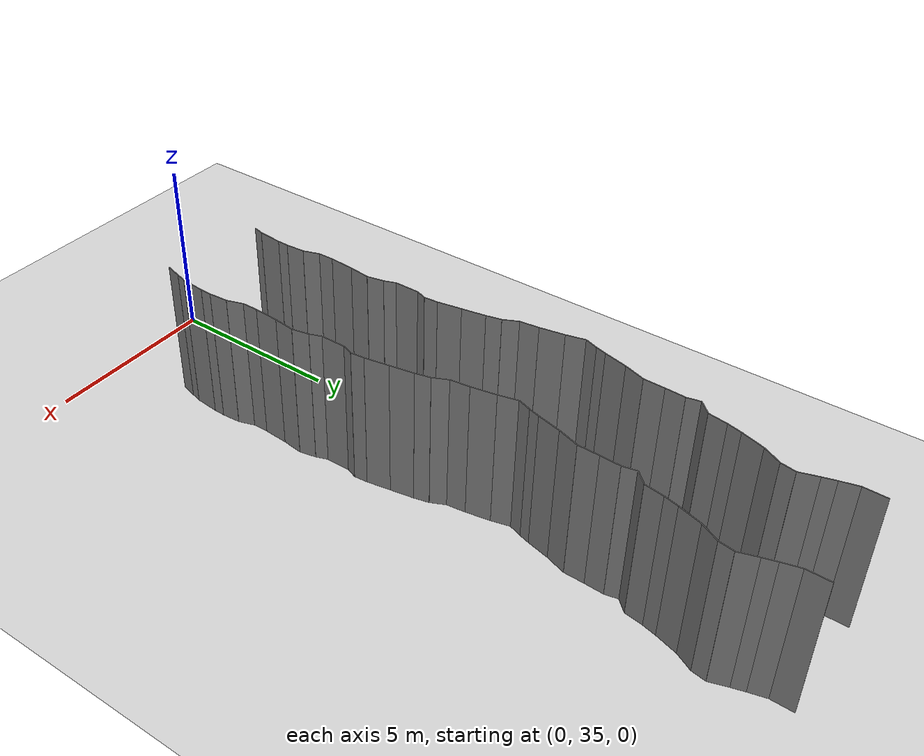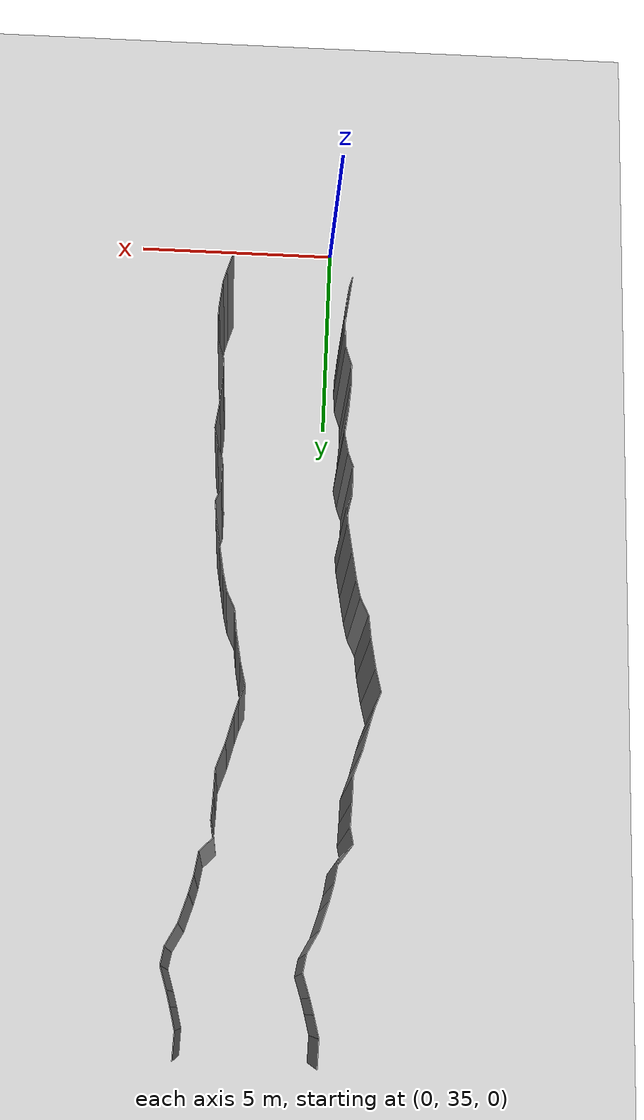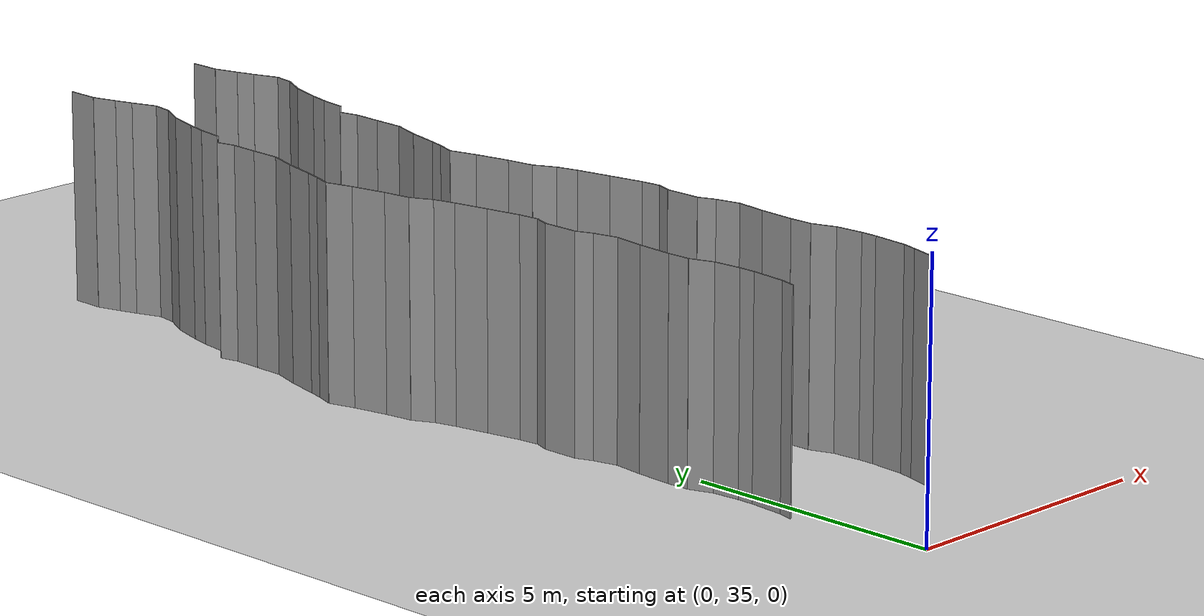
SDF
<sdf version="1.6">
 <world name="default">
  <model name="ground_plane">
   <static>1</static>
   <link name="link">
    <collision name="collision">
     <geometry><plane><normal>0 0 1</normal><size>200 200</size></plane></geometry>
     <surface><friction><ode><mu>100</mu><mu2>50</mu2></ode></friction></surface>
    </collision>
    <visual name="visual">
     <cast_shadows>0</cast_shadows>
     <geometry><plane><normal>0 0 1</normal><size>200 200</size></plane></geometry>
     <material>
      <script><uri>file://media/materials/scripts/gazebo.material</uri><name>Gazebo/Grey</name></script>
     </material>
    </visual>
   </link>
   <pose>0 100 0 0 -0 0</pose>
  </model>
  <model name="wall_149">
   <static>1</static>
   <pose>2.547432905189627 37.388819920014434 2 0 0 -0.2740966487866089</pose>
   <link name="link">
    <collision name="collision"><geometry><box><size>0.02 0.481318007896 4</size></box></geometry></collision>
    <visual name="visual">
     <material>
      <script><name>Gazebo/Grey</name><uri>file://media/materials/scripts/gazebo.material</uri></script>
     </material>
     <geometry><box><size>0.02 0.481318007896 4</size></box></geometry>
    </visual>
   </link>
  </model>
  <model name="wall_150">
   <static>1</static>
   <pose>-0.3501374143286483 37.76663995923312 2 0 0 -0.24981901023422332</pose>
   <link name="link">
    <collision name="collision"><geometry><box><size>0.02 0.301653803901 4</size></box></geometry></collision>
    <visual name="visual">
     <material>
      <script><name>Gazebo/Grey</name><uri>file://media/materials/scripts/gazebo.material</uri></script>
     </material>
     <geometry><box><size>0.02 0.301653803901 4</size></box></geometry>
    </visual>
   </link>
  </model>
  <model name="wall_151">
   <static>1</static>
   <pose>2.6498625856713516 37.76663995923312 2 0 0 -0.24981901023422332</pose>
   <link name="link">
    <collision name="collision"><geometry><box><size>0.02 0.301653803901 4</size></box></geometry></collision>
    <visual name="visual">
     <material>
      <script><name>Gazebo/Grey</name><uri>file://media/materials/scripts/gazebo.material</uri></script>
     </material>
     <geometry><box><size>0.02 0.301653803901 4</size></box></geometry>
    </visual>
   </link>
  </model>
  <model name="wall_152">
   <static>1</static>
   <pose>-0.2819050552775148 38.25617313278533 2 0 0 -0.08986992093812</pose>
   <link name="link">
    <collision name="collision"><geometry><box><size>0.02 0.689559502268 4</size></box></geometry></collision>
    <visual name="visual">
     <material>
      <script><name>Gazebo/Grey</name><uri>file://media/materials/scripts/gazebo.material</uri></script>
     </material>
     <geometry><box><size>0.02 0.689559502268 4</size></box></geometry>
    </visual>
   </link>
  </model>
  <model name="wall_153">
   <static>1</static>
   <pose>2.7180949447224854 38.25617313278533 2 0 0 -0.08986992093812</pose>
   <link name="link">
    <collision name="collision"><geometry><box><size>0.02 0.689559502268 4</size></box></geometry></collision>
    <visual name="visual">
     <material>
      <script><name>Gazebo/Grey</name><uri>file://media/materials/scripts/gazebo.material</uri></script>
     </material>
     <geometry><box><size>0.02 0.689559502268 4</size></box></geometry>
    </visual>
   </link>
  </model>
  <model name="wall_154">
   <static>1</static>
   <pose>-0.24889452237619888 38.758822427526724 2 0 0 -0.012977322206467757</pose>
   <link name="link">
    <collision name="collision"><geometry><box><size>0.02 0.318548685734 4</size></box></geometry></collision>
    <visual name="visual">
     <material>
      <script><name>Gazebo/Grey</name><uri>file://media/materials/scripts/gazebo.material</uri></script>
     </material>
     <geometry><box><size>0.02 0.318548685734 4</size></box></geometry>
    </visual>
   </link>
  </model>
  <model name="wall_155">
   <static>1</static>
   <pose>2.7511054776238013 38.758822427526724 2 0 0 -0.012977322206467757</pose>
   <link name="link">
    <collision name="collision"><geometry><box><size>0.02 0.318548685734 4</size></box></geometry></collision>
    <visual name="visual">
     <material>
      <script><name>Gazebo/Grey</name><uri>file://media/materials/scripts/gazebo.material</uri></script>
     </material>
     <geometry><box><size>0.02 0.318548685734 4</size></box></geometry>
    </visual>
   </link>
  </model>
  <model name="wall_156">
   <static>1</static>
   <pose>-0.2653965756020605 39.18522031636197 2 0 0 0.06939934202213129</pose>
   <link name="link">
    <collision name="collision"><geometry><box><size>0.02 0.535563105449 4</size></box></geometry></collision>
    <visual name="visual">
     <material>
      <script><name>Gazebo/Grey</name><uri>file://media/materials/scripts/gazebo.material</uri></script>
     </material>
     <geometry><box><size>0.02 0.535563105449 4</size></box></geometry>
    </visual>
   </link>
  </model>
  <model name="wall_157">
   <static>1</static>
   <pose>2.7346034243979394 39.18522031636197 2 0 0 0.06939934202213129</pose>
   <link name="link">
    <collision name="collision"><geometry><box><size>0.02 0.535563105449 4</size></box></geometry></collision>
    <visual name="visual">
     <material>
      <script><name>Gazebo/Grey</name><uri>file://media/materials/scripts/gazebo.material</uri></script>
     </material>
     <geometry><box><size>0.02 0.535563105449 4</size></box></geometry>
    </visual>
   </link>
  </model>
  <model name="wall_158">
   <static>1</static>
   <pose>-0.3594525953552512 39.67685994012748 2 0 0 0.32436544417214785</pose>
   <link name="link">
    <collision name="collision"><geometry><box><size>0.02 0.473707694208 4</size></box></geometry></collision>
    <visual name="visual">
     <material>
      <script><name>Gazebo/Grey</name><uri>file://media/materials/scripts/gazebo.material</uri></script>
     </material>
     <geometry><box><size>0.02 0.473707694208 4</size></box></geometry>
    </visual>
   </link>
  </model>
  <model name="wall_159">
   <static>1</static>
   <pose>2.6405474046447486 39.67685994012748 2 0 0 0.32436544417214785</pose>
   <link name="link">
    <collision name="collision"><geometry><box><size>0.02 0.473707694208 4</size></box></geometry></collision>
    <visual name="visual">
     <material>
      <script><name>Gazebo/Grey</name><uri>file://media/materials/scripts/gazebo.material</uri></script>
     </material>
     <geometry><box><size>0.02 0.473707694208 4</size></box></geometry>
    </visual>
   </link>
  </model>
  <model name="wall_160">
   <static>1</static>
   <pose>-0.43877629330907925 40.12285888199008 2 0 0 0.01731967832174117</pose>
   <link name="link">
    <collision name="collision"><geometry><box><size>0.02 0.44305900211 4</size></box></geometry></collision>
    <visual name="visual">
     <material>
      <script><name>Gazebo/Grey</name><uri>file://media/materials/scripts/gazebo.material</uri></script>
     </material>
     <geometry><box><size>0.02 0.44305900211 4</size></box></geometry>
    </visual>
   </link>
  </model>
  <model name="wall_161">
   <static>1</static>
   <pose>2.561223706690921 40.12285888199008 2 0 0 0.01731967832174117</pose>
   <link name="link">
    <collision name="collision"><geometry><box><size>0.02 0.44305900211 4</size></box></geometry></collision>
    <visual name="visual">
     <material>
      <script><name>Gazebo/Grey</name><uri>file://media/materials/scripts/gazebo.material</uri></script>
     </material>
     <geometry><box><size>0.02 0.44305900211 4</size></box></geometry>
    </visual>
   </link>
  </model>
  <model name="wall_162">
   <static>1</static>
   <pose>-0.42102622864640843 40.691990710651424 2 0 0 -0.06201612899759961</pose>
   <link name="link">
    <collision name="collision"><geometry><box><size>0.02 0.696610258369 4</size></box></geometry></collision>
    <visual name="visual">
     <material>
      <script><name>Gazebo/Grey</name><uri>file://media/materials/scripts/gazebo.material</uri></script>
     </material>
     <geometry><box><size>0.02 0.696610258369 4</size></box></geometry>
    </visual>
   </link>
  </model>
  <model name="wall_163">
   <static>1</static>
   <pose>2.5789737713535916 40.691990710651424 2 0 0 -0.06201612899759961</pose>
   <link name="link">
    <collision name="collision"><geometry><box><size>0.02 0.696610258369 4</size></box></geometry></collision>
    <visual name="visual">
     <material>
      <script><name>Gazebo/Grey</name><uri>file://media/materials/scripts/gazebo.material</uri></script>
     </material>
     <geometry><box><size>0.02 0.696610258369 4</size></box></geometry>
    </visual>
   </link>
  </model>
  <model name="wall_164">
   <static>1</static>
   <pose>-0.36419240358145516 41.33347121600139 2 0 0 -0.1193810797591467</pose>
   <link name="link">
    <collision name="collision"><geometry><box><size>0.02 0.591902749994 4</size></box></geometry></collision>
    <visual name="visual">
     <material>
      <script><name>Gazebo/Grey</name><uri>file://media/materials/scripts/gazebo.material</uri></script>
     </material>
     <geometry><box><size>0.02 0.591902749994 4</size></box></geometry>
    </visual>
   </link>
  </model>
  <model name="wall_165">
   <static>1</static>
   <pose>2.635807596418545 41.33347121600139 2 0 0 -0.1193810797591467</pose>
   <link name="link">
    <collision name="collision"><geometry><box><size>0.02 0.591902749994 4</size></box></geometry></collision>
    <visual name="visual">
     <material>
      <script><name>Gazebo/Grey</name><uri>file://media/materials/scripts/gazebo.material</uri></script>
     </material>
     <geometry><box><size>0.02 0.591902749994 4</size></box></geometry>
    </visual>
   </link>
  </model>
  <model name="wall_166">
   <static>1</static>
   <pose>-0.3775345685439475 41.861964648415615 2 0 0 0.20418690418575697</pose>
   <link name="link">
    <collision name="collision"><geometry><box><size>0.02 0.479252872855 4</size></box></geometry></collision>
    <visual name="visual">
     <material>
      <script><name>Gazebo/Grey</name><uri>file://media/materials/scripts/gazebo.material</uri></script>
     </material>
     <geometry><box><size>0.02 0.479252872855 4</size></box></geometry>
    </visual>
   </link>
  </model>
  <model name="wall_167">
   <static>1</static>
   <pose>2.6224654314560523 41.861964648415615 2 0 0 0.20418690418575697</pose>
   <link name="link">
    <collision name="collision"><geometry><box><size>0.02 0.479252872855 4</size></box></geometry></collision>
    <visual name="visual">
     <material>
      <script><name>Gazebo/Grey</name><uri>file://media/materials/scripts/gazebo.material</uri></script>
     </material>
     <geometry><box><size>0.02 0.479252872855 4</size></box></geometry>
    </visual>
   </link>
  </model>
  <model name="wall_168">
   <static>1</static>
   <pose>-0.4874121234096807 42.25798603218325 2 0 0 0.36296589015895103</pose>
   <link name="link">
    <collision name="collision"><geometry><box><size>0.02 0.345238842175 4</size></box></geometry></collision>
    <visual name="visual">
     <material>
      <script><name>Gazebo/Grey</name><uri>file://media/materials/scripts/gazebo.material</uri></script>
     </material>
     <geometry><box><size>0.02 0.345238842175 4</size></box></geometry>
    </visual>
   </link>
  </model>
  <model name="wall_169">
   <static>1</static>
   <pose>2.5125878765903193 42.25798603218325 2 0 0 0.36296589015895103</pose>
   <link name="link">
    <collision name="collision"><geometry><box><size>0.02 0.345238842175 4</size></box></geometry></collision>
    <visual name="visual">
     <material>
      <script><name>Gazebo/Grey</name><uri>file://media/materials/scripts/gazebo.material</uri></script>
     </material>
     <geometry><box><size>0.02 0.345238842175 4</size></box></geometry>
    </visual>
   </link>
  </model>
  <model name="wall_170">
   <static>1</static>
   <pose>-0.5481440633023615 42.76830328812117 2 0 0 -0.0015942857669710756</pose>
   <link name="link">
    <collision name="collision"><geometry><box><size>0.02 0.697889591433 4</size></box></geometry></collision>
    <visual name="visual">
     <material>
      <script><name>Gazebo/Grey</name><uri>file://media/materials/scripts/gazebo.material</uri></script>
     </material>
     <geometry><box><size>0.02 0.697889591433 4</size></box></geometry>
    </visual>
   </link>
  </model>
  <model name="wall_171">
   <static>1</static>
   <pose>2.4518559366976387 42.76830328812117 2 0 0 -0.0015942857669710756</pose>
   <link name="link">
    <collision name="collision"><geometry><box><size>0.02 0.697889591433 4</size></box></geometry></collision>
    <visual name="visual">
     <material>
      <script><name>Gazebo/Grey</name><uri>file://media/materials/scripts/gazebo.material</uri></script>
     </material>
     <geometry><box><size>0.02 0.697889591433 4</size></box></geometry>
    </visual>
   </link>
  </model>
  <model name="wall_172">
   <static>1</static>
   <pose>-0.4940392232407095 43.264878268750735 2 0 0 -0.347961069554558</pose>
   <link name="link">
    <collision name="collision"><geometry><box><size>0.02 0.314084362586 4</size></box></geometry></collision>
    <visual name="visual">
     <material>
      <script><name>Gazebo/Grey</name><uri>file://media/materials/scripts/gazebo.material</uri></script>
     </material>
     <geometry><box><size>0.02 0.314084362586 4</size></box></geometry>
    </visual>
   </link>
  </model>
  <model name="wall_173">
   <static>1</static>
   <pose>2.5059607767592906 43.264878268750735 2 0 0 -0.347961069554558</pose>
   <link name="link">
    <collision name="collision"><geometry><box><size>0.02 0.314084362586 4</size></box></geometry></collision>
    <visual name="visual">
     <material>
      <script><name>Gazebo/Grey</name><uri>file://media/materials/scripts/gazebo.material</uri></script>
     </material>
     <geometry><box><size>0.02 0.314084362586 4</size></box></geometry>
    </visual>
   </link>
  </model>
  <model name="wall_174">
   <static>1</static>
   <pose>-0.4576159353024333 43.60513908679957 2 0 0 0.08866902160218598</pose>
   <link name="link">
    <collision name="collision"><geometry><box><size>0.02 0.386779852806 4</size></box></geometry></collision>
    <visual name="visual">
     <material>
      <script><name>Gazebo/Grey</name><uri>file://media/materials/scripts/gazebo.material</uri></script>
     </material>
     <geometry><box><size>0.02 0.386779852806 4</size></box></geometry>
    </visual>
   </link>
  </model>
  <model name="wall_175">
   <static>1</static>
   <pose>2.5423840646975666 43.60513908679957 2 0 0 0.08866902160218598</pose>
   <link name="link">
    <collision name="collision"><geometry><box><size>0.02 0.386779852806 4</size></box></geometry></collision>
    <visual name="visual">
     <material>
      <script><name>Gazebo/Grey</name><uri>file://media/materials/scripts/gazebo.material</uri></script>
     </material>
     <geometry><box><size>0.02 0.386779852806 4</size></box></geometry>
    </visual>
   </link>
  </model>
  <model name="wall_176">
   <static>1</static>
   <pose>-0.5339978235553362 44.132258701786135 2 0 0 0.17533638301814827</pose>
   <link name="link">
    <collision name="collision"><geometry><box><size>0.02 0.679395397823 4</size></box></geometry></collision>
    <visual name="visual">
     <material>
      <script><name>Gazebo/Grey</name><uri>file://media/materials/scripts/gazebo.material</uri></script>
     </material>
     <geometry><box><size>0.02 0.679395397823 4</size></box></geometry>
    </visual>
   </link>
  </model>
  <model name="wall_177">
   <static>1</static>
   <pose>2.466002176444664 44.132258701786135 2 0 0 0.17533638301814827</pose>
   <link name="link">
    <collision name="collision"><geometry><box><size>0.02 0.679395397823 4</size></box></geometry></collision>
    <visual name="visual">
     <material>
      <script><name>Gazebo/Grey</name><uri>file://media/materials/scripts/gazebo.material</uri></script>
     </material>
     <geometry><box><size>0.02 0.679395397823 4</size></box></geometry>
    </visual>
   </link>
  </model>
  <model name="wall_178">
   <static>1</static>
   <pose>-0.652272023498061 44.79759674815967 2 0 0 0.17652559048281447</pose>
   <link name="link">
    <collision name="collision"><geometry><box><size>0.02 0.672142487366 4</size></box></geometry></collision>
    <visual name="visual">
     <material>
      <script><name>Gazebo/Grey</name><uri>file://media/materials/scripts/gazebo.material</uri></script>
     </material>
     <geometry><box><size>0.02 0.672142487366 4</size></box></geometry>
    </visual>
   </link>
  </model>
  <model name="wall_179">
   <static>1</static>
   <pose>2.3477279765019388 44.79759674815967 2 0 0 0.17652559048281447</pose>
   <link name="link">
    <collision name="collision"><geometry><box><size>0.02 0.672142487366 4</size></box></geometry></collision>
    <visual name="visual">
     <material>
      <script><name>Gazebo/Grey</name><uri>file://media/materials/scripts/gazebo.material</uri></script>
     </material>
     <geometry><box><size>0.02 0.672142487366 4</size></box></geometry>
    </visual>
   </link>
  </model>
  <model name="wall_180">
   <static>1</static>
   <pose>-0.7622447603486947 45.3356587878682 2 0 0 0.24112255314991304</pose>
   <link name="link">
    <collision name="collision"><geometry><box><size>0.02 0.426773158997 4</size></box></geometry></collision>
    <visual name="visual">
     <material>
      <script><name>Gazebo/Grey</name><uri>file://media/materials/scripts/gazebo.material</uri></script>
     </material>
     <geometry><box><size>0.02 0.426773158997 4</size></box></geometry>
    </visual>
   </link>
  </model>
  <model name="wall_181">
   <static>1</static>
   <pose>2.2377552396513054 45.3356587878682 2 0 0 0.24112255314991304</pose>
   <link name="link">
    <collision name="collision"><geometry><box><size>0.02 0.426773158997 4</size></box></geometry></collision>
    <visual name="visual">
     <material>
      <script><name>Gazebo/Grey</name><uri>file://media/materials/scripts/gazebo.material</uri></script>
     </material>
     <geometry><box><size>0.02 0.426773158997 4</size></box></geometry>
    </visual>
   </link>
  </model>
  <model name="wall_182">
   <static>1</static>
   <pose>-0.9120827895564096 45.744138921845156 2 0 0 0.456665424181509</pose>
   <link name="link">
    <collision name="collision"><geometry><box><size>0.02 0.448491277439 4</size></box></geometry></collision>
    <visual name="visual">
     <material>
      <script><name>Gazebo/Grey</name><uri>file://media/materials/scripts/gazebo.material</uri></script>
     </material>
     <geometry><box><size>0.02 0.448491277439 4</size></box></geometry>
    </visual>
   </link>
  </model>
  <model name="wall_183">
   <static>1</static>
   <pose>2.0879172104435906 45.744138921845156 2 0 0 0.456665424181509</pose>
   <link name="link">
    <collision name="collision"><geometry><box><size>0.02 0.448491277439 4</size></box></geometry></collision>
    <visual name="visual">
     <material>
      <script><name>Gazebo/Grey</name><uri>file://media/materials/scripts/gazebo.material</uri></script>
     </material>
     <geometry><box><size>0.02 0.448491277439 4</size></box></geometry>
    </visual>
   </link>
  </model>
  <model name="wall_184">
   <static>1</static>
   <pose>-1.0443303031959443 46.21089229685716 2 0 0 0.1250182159949997</pose>
   <link name="link">
    <collision name="collision"><geometry><box><size>0.02 0.535149952839 4</size></box></geometry></collision>
    <visual name="visual">
     <material>
      <script><name>Gazebo/Grey</name><uri>file://media/materials/scripts/gazebo.material</uri></script>
     </material>
     <geometry><box><size>0.02 0.535149952839 4</size></box></geometry>
    </visual>
   </link>
  </model>
  <model name="wall_185">
   <static>1</static>
   <pose>1.9556696968040557 46.21089229685716 2 0 0 0.1250182159949997</pose>
   <link name="link">
    <collision name="collision"><geometry><box><size>0.02 0.535149952839 4</size></box></geometry></collision>
    <visual name="visual">
     <material>
      <script><name>Gazebo/Grey</name><uri>file://media/materials/scripts/gazebo.material</uri></script>
     </material>
     <geometry><box><size>0.02 0.535149952839 4</size></box></geometry>
    </visual>
   </link>
  </model>
  <model name="wall_186">
   <static>1</static>
   <pose>-1.1405832294290126 46.816654457277146 2 0 0 0.18275354911180472</pose>
   <link name="link">
    <collision name="collision"><geometry><box><size>0.02 0.692076147686 4</size></box></geometry></collision>
    <visual name="visual">
     <material>
      <script><name>Gazebo/Grey</name><uri>file://media/materials/scripts/gazebo.material</uri></script>
     </material>
     <geometry><box><size>0.02 0.692076147686 4</size></box></geometry>
    </visual>
   </link>
  </model>
  <model name="wall_187">
   <static>1</static>
   <pose>1.8594167705709874 46.816654457277146 2 0 0 0.18275354911180472</pose>
   <link name="link">
    <collision name="collision"><geometry><box><size>0.02 0.692076147686 4</size></box></geometry></collision>
    <visual name="visual">
     <material>
      <script><name>Gazebo/Grey</name><uri>file://media/materials/scripts/gazebo.material</uri></script>
     </material>
     <geometry><box><size>0.02 0.692076147686 4</size></box></geometry>
    </visual>
   </link>
  </model>
  <model name="wall_188">
   <static>1</static>
   <pose>-1.2688408136935627 47.41708719223353 2 0 0 0.24617224283887565</pose>
   <link name="link">
    <collision name="collision"><geometry><box><size>0.02 0.536488345496 4</size></box></geometry></collision>
    <visual name="visual">
     <material>
      <script><name>Gazebo/Grey</name><uri>file://media/materials/scripts/gazebo.material</uri></script>
     </material>
     <geometry><box><size>0.02 0.536488345496 4</size></box></geometry>
    </visual>
   </link>
  </model>
  <model name="wall_189">
   <static>1</static>
   <pose>1.7311591863064373 47.41708719223353 2 0 0 0.24617224283887565</pose>
   <link name="link">
    <collision name="collision"><geometry><box><size>0.02 0.536488345496 4</size></box></geometry></collision>
    <visual name="visual">
     <material>
      <script><name>Gazebo/Grey</name><uri>file://media/materials/scripts/gazebo.material</uri></script>
     </material>
     <geometry><box><size>0.02 0.536488345496 4</size></box></geometry>
    </visual>
   </link>
  </model>
  <model name="wall_190">
   <static>1</static>
   <pose>-1.2700704991006277 47.86031028931625 2 0 0 -0.3369988622064906</pose>
   <link name="link">
    <collision name="collision"><geometry><box><size>0.02 0.387953628861 4</size></box></geometry></collision>
    <visual name="visual">
     <material>
      <script><name>Gazebo/Grey</name><uri>file://media/materials/scripts/gazebo.material</uri></script>
     </material>
     <geometry><box><size>0.02 0.387953628861 4</size></box></geometry>
    </visual>
   </link>
  </model>
  <model name="wall_191">
   <static>1</static>
   <pose>1.7299295008993723 47.86031028931625 2 0 0 -0.3369988622064906</pose>
   <link name="link">
    <collision name="collision"><geometry><box><size>0.02 0.387953628861 4</size></box></geometry></collision>
    <visual name="visual">
     <material>
      <script><name>Gazebo/Grey</name><uri>file://media/materials/scripts/gazebo.material</uri></script>
     </material>
     <geometry><box><size>0.02 0.387953628861 4</size></box></geometry>
    </visual>
   </link>
  </model>
  <model name="wall_192">
   <static>1</static>
   <pose>-1.1652691215100779 48.19052197741024 2 0 0 -0.2696081151691656</pose>
   <link name="link">
    <collision name="collision"><geometry><box><size>0.02 0.305321274536 4</size></box></geometry></collision>
    <visual name="visual">
     <material>
      <script><name>Gazebo/Grey</name><uri>file://media/materials/scripts/gazebo.material</uri></script>
     </material>
     <geometry><box><size>0.02 0.305321274536 4</size></box></geometry>
    </visual>
   </link>
  </model>
  <model name="wall_193">
   <static>1</static>
   <pose>1.8347308784899221 48.19052197741024 2 0 0 -0.2696081151691656</pose>
   <link name="link">
    <collision name="collision"><geometry><box><size>0.02 0.305321274536 4</size></box></geometry></collision>
    <visual name="visual">
     <material>
      <script><name>Gazebo/Grey</name><uri>file://media/materials/scripts/gazebo.material</uri></script>
     </material>
     <geometry><box><size>0.02 0.305321274536 4</size></box></geometry>
    </visual>
   </link>
  </model>
  <model name="wall_194">
   <static>1</static>
   <pose>-1.0475828389083932 48.659508996969315 2 0 0 -0.23490637736963357</pose>
   <link name="link">
    <collision name="collision"><geometry><box><size>0.02 0.661859610693 4</size></box></geometry></collision>
    <visual name="visual">
     <material>
      <script><name>Gazebo/Grey</name><uri>file://media/materials/scripts/gazebo.material</uri></script>
     </material>
     <geometry><box><size>0.02 0.661859610693 4</size></box></geometry>
    </visual>
   </link>
  </model>
  <model name="wall_195">
   <static>1</static>
   <pose>1.9524171610916068 48.659508996969315 2 0 0 -0.23490637736963357</pose>
   <link name="link">
    <collision name="collision"><geometry><box><size>0.02 0.661859610693 4</size></box></geometry></collision>
    <visual name="visual">
     <material>
      <script><name>Gazebo/Grey</name><uri>file://media/materials/scripts/gazebo.material</uri></script>
     </material>
     <geometry><box><size>0.02 0.661859610693 4</size></box></geometry>
    </visual>
   </link>
  </model>
  <model name="wall_196">
   <static>1</static>
   <pose>-0.8756448846247644 49.269084491562054 2 0 0 -0.3186255836250747</pose>
   <link name="link">
    <collision name="collision"><geometry><box><size>0.02 0.605968914619 4</size></box></geometry></collision>
    <visual name="visual">
     <material>
      <script><name>Gazebo/Grey</name><uri>file://media/materials/scripts/gazebo.material</uri></script>
     </material>
     <geometry><box><size>0.02 0.605968914619 4</size></box></geometry>
    </visual>
   </link>
  </model>
  <model name="wall_197">
   <static>1</static>
   <pose>2.1243551153752356 49.269084491562054 2 0 0 -0.3186255836250747</pose>
   <link name="link">
    <collision name="collision"><geometry><box><size>0.02 0.605968914619 4</size></box></geometry></collision>
    <visual name="visual">
     <material>
      <script><name>Gazebo/Grey</name><uri>file://media/materials/scripts/gazebo.material</uri></script>
     </material>
     <geometry><box><size>0.02 0.605968914619 4</size></box></geometry>
    </visual>
   </link>
  </model>
  <model name="wall_198">
   <static>1</static>
   <pose>-0.7751434635648038 49.84569974048715 2 0 0 -0.019341263514323866</pose>
   <link name="link">
    <collision name="collision"><geometry><box><size>0.02 0.577869980041 4</size></box></geometry></collision>
    <visual name="visual">
     <material>
      <script><name>Gazebo/Grey</name><uri>file://media/materials/scripts/gazebo.material</uri></script>
     </material>
     <geometry><box><size>0.02 0.577869980041 4</size></box></geometry>
    </visual>
   </link>
  </model>
  <model name="wall_199">
   <static>1</static>
   <pose>2.224856536435196 49.84569974048715 2 0 0 -0.019341263514323866</pose>
   <link name="link">
    <collision name="collision"><geometry><box><size>0.02 0.577869980041 4</size></box></geometry></collision>
    <visual name="visual">
     <material>
      <script><name>Gazebo/Grey</name><uri>file://media/materials/scripts/gazebo.material</uri></script>
     </material>
     <geometry><box><size>0.02 0.577869980041 4</size></box></geometry>
    </visual>
   </link>
  </model>
  <model name="wall_200">
   <static>1</static>
   <pose>-0.7590049018573229 50.40562366841122 2 0 0 -0.038906074752634745</pose>
   <link name="link">
    <collision name="collision"><geometry><box><size>0.02 0.542496490507 4</size></box></geometry></collision>
    <visual name="visual">
     <material>
      <script><name>Gazebo/Grey</name><uri>file://media/materials/scripts/gazebo.material</uri></script>
     </material>
     <geometry><box><size>0.02 0.542496490507 4</size></box></geometry>
    </visual>
   </link>
  </model>
  <model name="wall_201">
   <static>1</static>
   <pose>2.240995098142677 50.40562366841122 2 0 0 -0.038906074752634745</pose>
   <link name="link">
    <collision name="collision"><geometry><box><size>0.02 0.542496490507 4</size></box></geometry></collision>
    <visual name="visual">
     <material>
      <script><name>Gazebo/Grey</name><uri>file://media/materials/scripts/gazebo.material</uri></script>
     </material>
     <geometry><box><size>0.02 0.542496490507 4</size></box></geometry>
    </visual>
   </link>
  </model>
  <model name="wall_202">
   <static>1</static>
   <pose>-0.7879365493655243 50.8603624256533 2 0 0 0.21171162609965616</pose>
   <link name="link">
    <collision name="collision"><geometry><box><size>0.02 0.37578175667 4</size></box></geometry></collision>
    <visual name="visual">
     <material>
      <script><name>Gazebo/Grey</name><uri>file://media/materials/scripts/gazebo.material</uri></script>
     </material>
     <geometry><box><size>0.02 0.37578175667 4</size></box></geometry>
    </visual>
   </link>
  </model>
  <model name="wall_203">
   <static>1</static>
   <pose>2.2120634506344756 50.8603624256533 2 0 0 0.21171162609965616</pose>
   <link name="link">
    <collision name="collision"><geometry><box><size>0.02 0.37578175667 4</size></box></geometry></collision>
    <visual name="visual">
     <material>
      <script><name>Gazebo/Grey</name><uri>file://media/materials/scripts/gazebo.material</uri></script>
     </material>
     <geometry><box><size>0.02 0.37578175667 4</size></box></geometry>
    </visual>
   </link>
  </model>
  <model name="wall_204">
   <static>1</static>
   <pose>-0.6773272596741692 51.20145269797582 2 0 0 -0.7616519027937385</pose>
   <link name="link">
    <collision name="collision"><geometry><box><size>0.02 0.434973466231 4</size></box></geometry></collision>
    <visual name="visual">
     <material>
      <script><name>Gazebo/Grey</name><uri>file://media/materials/scripts/gazebo.material</uri></script>
     </material>
     <geometry><box><size>0.02 0.434973466231 4</size></box></geometry>
    </visual>
   </link>
  </model>
  <model name="wall_205">
   <static>1</static>
   <pose>2.3226727403258307 51.20145269797582 2 0 0 -0.7616519027937385</pose>
   <link name="link">
    <collision name="collision"><geometry><box><size>0.02 0.434973466231 4</size></box></geometry></collision>
    <visual name="visual">
     <material>
      <script><name>Gazebo/Grey</name><uri>file://media/materials/scripts/gazebo.material</uri></script>
     </material>
     <geometry><box><size>0.02 0.434973466231 4</size></box></geometry>
    </visual>
   </link>
  </model>
  <model name="wall_206">
   <static>1</static>
   <pose>-0.4886902938586424 51.6171733905728 2 0 0 -0.14811964377243006</pose>
   <link name="link">
    <collision name="collision"><geometry><box><size>0.02 0.522372201461 4</size></box></geometry></collision>
    <visual name="visual">
     <material>
      <script><name>Gazebo/Grey</name><uri>file://media/materials/scripts/gazebo.material</uri></script>
     </material>
     <geometry><box><size>0.02 0.522372201461 4</size></box></geometry>
    </visual>
   </link>
  </model>
  <model name="wall_207">
   <static>1</static>
   <pose>2.5113097061413576 51.6171733905728 2 0 0 -0.14811964377243006</pose>
   <link name="link">
    <collision name="collision"><geometry><box><size>0.02 0.522372201461 4</size></box></geometry></collision>
    <visual name="visual">
     <material>
      <script><name>Gazebo/Grey</name><uri>file://media/materials/scripts/gazebo.material</uri></script>
     </material>
     <geometry><box><size>0.02 0.522372201461 4</size></box></geometry>
    </visual>
   </link>
  </model>
  <model name="wall_208">
   <static>1</static>
   <pose>-0.4044713053572868 52.06745214933676 2 0 0 -0.23359779419732346</pose>
   <link name="link">
    <collision name="collision"><geometry><box><size>0.02 0.394623133094 4</size></box></geometry></collision>
    <visual name="visual">
     <material>
      <script><name>Gazebo/Grey</name><uri>file://media/materials/scripts/gazebo.material</uri></script>
     </material>
     <geometry><box><size>0.02 0.394623133094 4</size></box></geometry>
    </visual>
   </link>
  </model>
  <model name="wall_209">
   <static>1</static>
   <pose>2.595528694642713 52.06745214933676 2 0 0 -0.23359779419732346</pose>
   <link name="link">
    <collision name="collision"><geometry><box><size>0.02 0.394623133094 4</size></box></geometry></collision>
    <visual name="visual">
     <material>
      <script><name>Gazebo/Grey</name><uri>file://media/materials/scripts/gazebo.material</uri></script>
     </material>
     <geometry><box><size>0.02 0.394623133094 4</size></box></geometry>
    </visual>
   </link>
  </model>
  <model name="wall_210">
   <static>1</static>
   <pose>-0.2655182622801782 52.57284202957973 2 0 0 -0.28925525018831144</pose>
   <link name="link">
    <collision name="collision"><geometry><box><size>0.02 0.654045949886 4</size></box></geometry></collision>
    <visual name="visual">
     <material>
      <script><name>Gazebo/Grey</name><uri>file://media/materials/scripts/gazebo.material</uri></script>
     </material>
     <geometry><box><size>0.02 0.654045949886 4</size></box></geometry>
    </visual>
   </link>
  </model>
  <model name="wall_211">
   <static>1</static>
   <pose>2.734481737719822 52.57284202957973 2 0 0 -0.28925525018831144</pose>
   <link name="link">
    <collision name="collision"><geometry><box><size>0.02 0.654045949886 4</size></box></geometry></collision>
    <visual name="visual">
     <material>
      <script><name>Gazebo/Grey</name><uri>file://media/materials/scripts/gazebo.material</uri></script>
     </material>
     <geometry><box><size>0.02 0.654045949886 4</size></box></geometry>
    </visual>
   </link>
  </model>
  <model name="wall_212">
   <static>1</static>
   <pose>-0.04548076145471383 53.12930405375266 2 0 0 -0.48076586060131665</pose>
   <link name="link">
    <collision name="collision"><geometry><box><size>0.02 0.548191891172 4</size></box></geometry></collision>
    <visual name="visual">
     <material>
      <script><name>Gazebo/Grey</name><uri>file://media/materials/scripts/gazebo.material</uri></script>
     </material>
     <geometry><box><size>0.02 0.548191891172 4</size></box></geometry>
    </visual>
   </link>
  </model>
  <model name="wall_213">
   <static>1</static>
   <pose>2.954519238545286 53.12930405375266 2 0 0 -0.48076586060131665</pose>
   <link name="link">
    <collision name="collision"><geometry><box><size>0.02 0.548191891172 4</size></box></geometry></collision>
    <visual name="visual">
     <material>
      <script><name>Gazebo/Grey</name><uri>file://media/materials/scripts/gazebo.material</uri></script>
     </material>
     <geometry><box><size>0.02 0.548191891172 4</size></box></geometry>
    </visual>
   </link>
  </model>
  <model name="wall_214">
   <static>1</static>
   <pose>0.11445738760053759 53.57257843106172 2 0 0 -0.1642022461847131</pose>
   <link name="link">
    <collision name="collision"><geometry><box><size>0.02 0.405959881911 4</size></box></geometry></collision>
    <visual name="visual">
     <material>
      <script><name>Gazebo/Grey</name><uri>file://media/materials/scripts/gazebo.material</uri></script>
     </material>
     <geometry><box><size>0.02 0.405959881911 4</size></box></geometry>
    </visual>
   </link>
  </model>
  <model name="wall_215">
   <static>1</static>
   <pose>3.1144573876005377 53.57257843106172 2 0 0 -0.1642022461847131</pose>
   <link name="link">
    <collision name="collision"><geometry><box><size>0.02 0.405959881911 4</size></box></geometry></collision>
    <visual name="visual">
     <material>
      <script><name>Gazebo/Grey</name><uri>file://media/materials/scripts/gazebo.material</uri></script>
     </material>
     <geometry><box><size>0.02 0.405959881911 4</size></box></geometry>
    </visual>
   </link>
  </model>
  <model name="wall_216">
   <static>1</static>
   <pose>0.06697689095392455 54.017140643387684 2 0 0 0.3188861483469097</pose>
   <link name="link">
    <collision name="collision"><geometry><box><size>0.02 0.51456685925 4</size></box></geometry></collision>
    <visual name="visual">
     <material>
      <script><name>Gazebo/Grey</name><uri>file://media/materials/scripts/gazebo.material</uri></script>
     </material>
     <geometry><box><size>0.02 0.51456685925 4</size></box></geometry>
    </visual>
   </link>
  </model>
  <model name="wall_217">
   <static>1</static>
   <pose>3.0669768909539243 54.017140643387684 2 0 0 0.3188861483469097</pose>
   <link name="link">
    <collision name="collision"><geometry><box><size>0.02 0.51456685925 4</size></box></geometry></collision>
    <visual name="visual">
     <material>
      <script><name>Gazebo/Grey</name><uri>file://media/materials/scripts/gazebo.material</uri></script>
     </material>
     <geometry><box><size>0.02 0.51456685925 4</size></box></geometry>
    </visual>
   </link>
  </model>
  <model name="wall_218">
   <static>1</static>
   <pose>-0.06453477250703407 54.43216498027852 2 0 0 0.28950719664963315</pose>
   <link name="link">
    <collision name="collision"><geometry><box><size>0.02 0.356249012453 4</size></box></geometry></collision>
    <visual name="visual">
     <material>
      <script><name>Gazebo/Grey</name><uri>file://media/materials/scripts/gazebo.material</uri></script>
     </material>
     <geometry><box><size>0.02 0.356249012453 4</size></box></geometry>
    </visual>
   </link>
  </model>
  <model name="wall_219">
   <static>1</static>
   <pose>2.935465227492966 54.43216498027852 2 0 0 0.28950719664963315</pose>
   <link name="link">
    <collision name="collision"><geometry><box><size>0.02 0.356249012453 4</size></box></geometry></collision>
    <visual name="visual">
     <material>
      <script><name>Gazebo/Grey</name><uri>file://media/materials/scripts/gazebo.material</uri></script>
     </material>
     <geometry><box><size>0.02 0.356249012453 4</size></box></geometry>
    </visual>
   </link>
  </model>
  <model name="wall_220">
   <static>1</static>
   <pose>-0.1778919025876617 54.83720268323161 2 0 0 0.26067906366527105</pose>
   <link name="link">
    <collision name="collision"><geometry><box><size>0.02 0.485038757545 4</size></box></geometry></collision>
    <visual name="visual">
     <material>
      <script><name>Gazebo/Grey</name><uri>file://media/materials/scripts/gazebo.material</uri></script>
     </material>
     <geometry><box><size>0.02 0.485038757545 4</size></box></geometry>
    </visual>
   </link>
  </model>
  <model name="wall_221">
   <static>1</static>
   <pose>2.8221080974123383 54.83720268323161 2 0 0 0.26067906366527105</pose>
   <link name="link">
    <collision name="collision"><geometry><box><size>0.02 0.485038757545 4</size></box></geometry></collision>
    <visual name="visual">
     <material>
      <script><name>Gazebo/Grey</name><uri>file://media/materials/scripts/gazebo.material</uri></script>
     </material>
     <geometry><box><size>0.02 0.485038757545 4</size></box></geometry>
    </visual>
   </link>
  </model>
  <model name="wall_222">
   <static>1</static>
   <pose>-0.2341143870490053 55.377687211786295 2 0 0 -0.02052134193655033</pose>
   <link name="link">
    <collision name="collision"><geometry><box><size>0.02 0.612446199887 4</size></box></geometry></collision>
    <visual name="visual">
     <material>
      <script><name>Gazebo/Grey</name><uri>file://media/materials/scripts/gazebo.material</uri></script>
     </material>
     <geometry><box><size>0.02 0.612446199887 4</size></box></geometry>
    </visual>
   </link>
  </model>
  <model name="wall_223">
   <static>1</static>
   <pose>2.7658856129509948 55.377687211786295 2 0 0 -0.02052134193655033</pose>
   <link name="link">
    <collision name="collision"><geometry><box><size>0.02 0.612446199887 4</size></box></geometry></collision>
    <visual name="visual">
     <material>
      <script><name>Gazebo/Grey</name><uri>file://media/materials/scripts/gazebo.material</uri></script>
     </material>
     <geometry><box><size>0.02 0.612446199887 4</size></box></geometry>
    </visual>
   </link>
  </model>
 </world>
</sdf>
